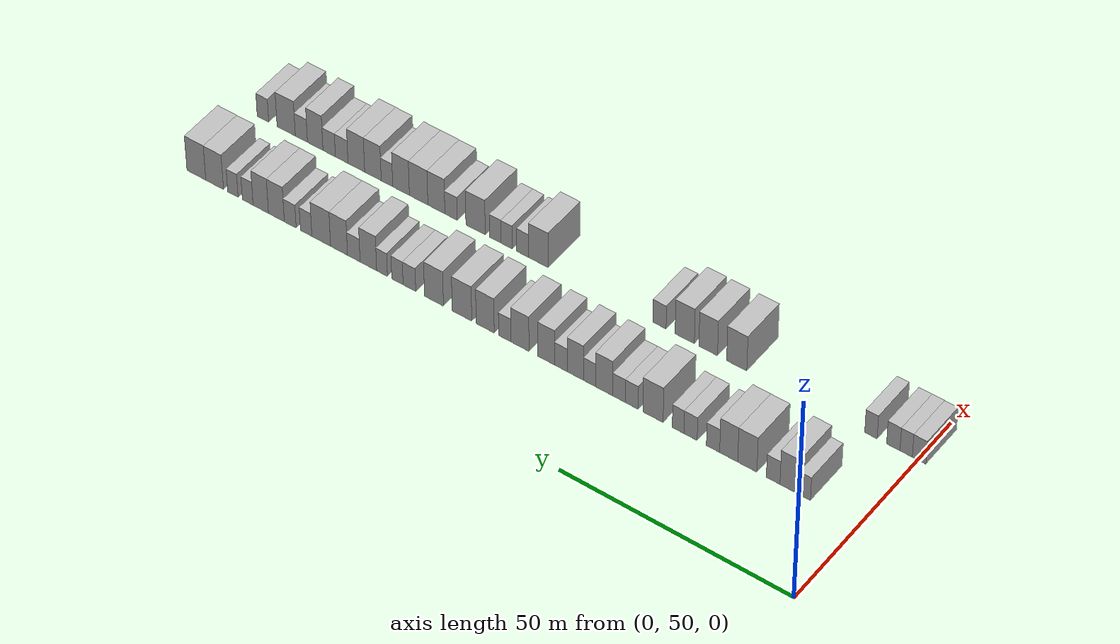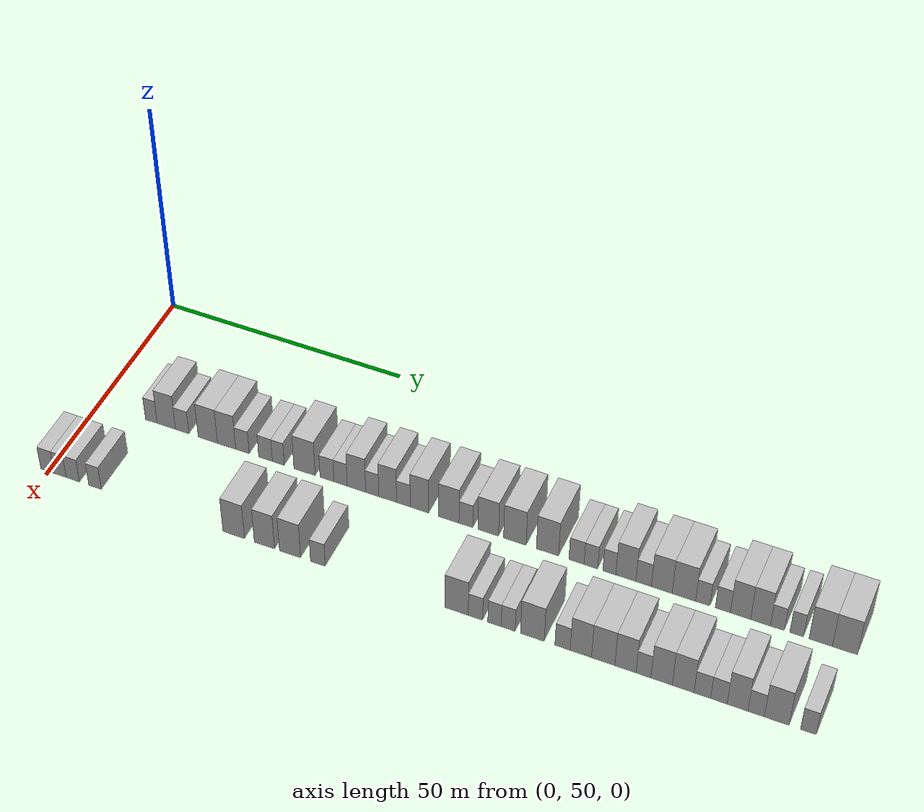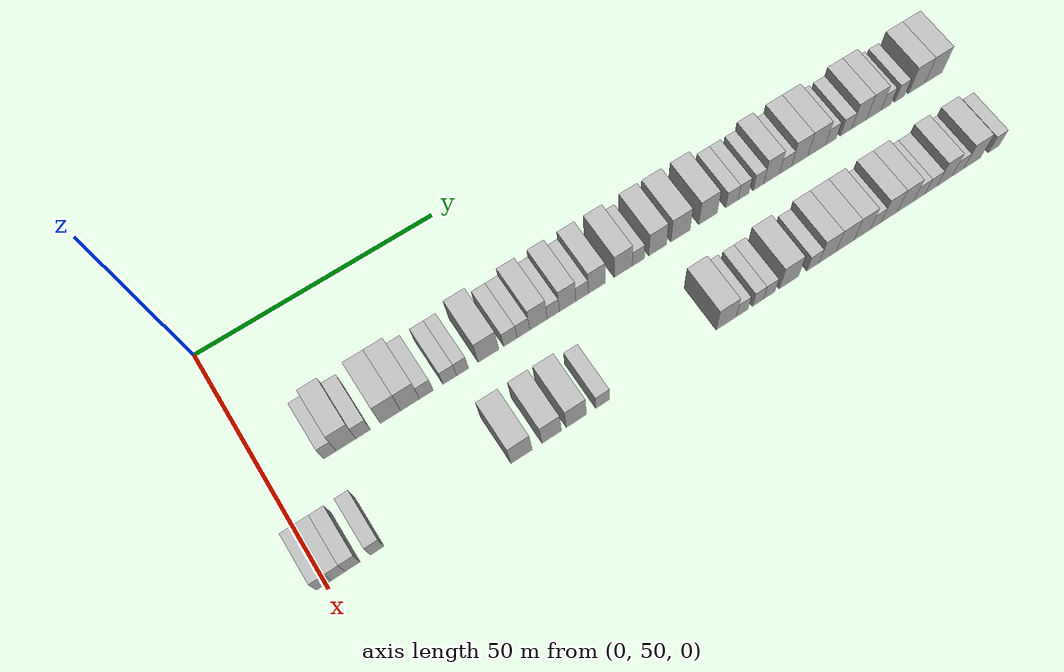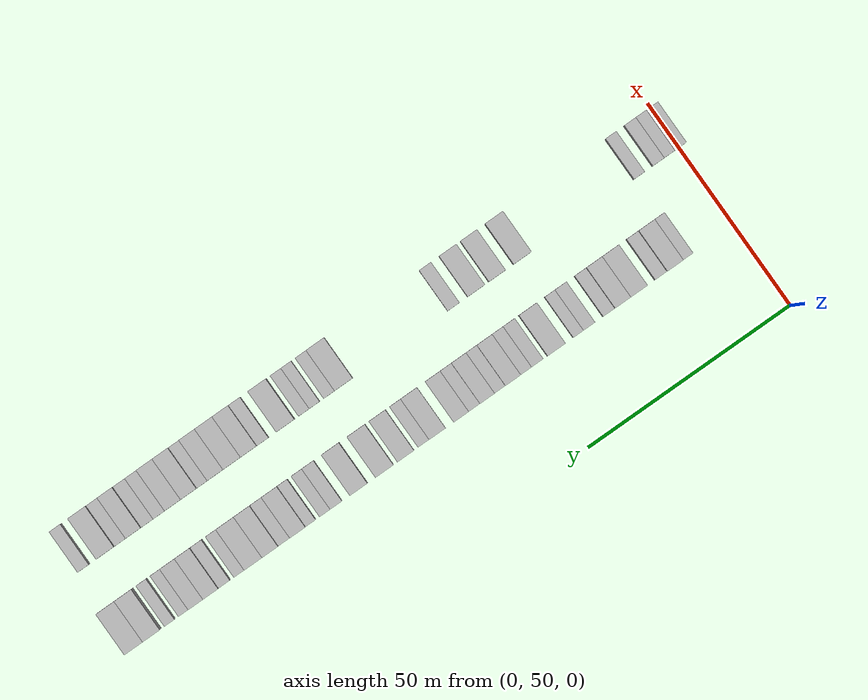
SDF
<sdf version="1.6">
 <world name="default">
  <model name="building_64">
   <static>1</static>
   <pose>25.0000 61.4079 0 0.000000 0.000000 0.000000</pose>
   <link name="link">
    <pose>0 0 3.00 0 0 0</pose>
    <collision name="collision"><geometry><box><size>10.0000 2.5252 6.0000</size></box></geometry></collision>
    <visual name="visual">
     <cast_shadows>0</cast_shadows>
     <geometry><box><size>10.0000 2.5252 6.0000</size></box></geometry>
     <material>
      <script>
       <uri>model://HANNAS_wall/materials/scripts</uri>
       <uri>model://HANNAS_wall/materials/textures</uri>
       <name>vrc/HANNAS_wall</name>
      </script>
     </material>
    </visual>
   </link>
  </model>
  <model name="building_65">
   <static>1</static>
   <pose>25.0000 64.6402 0 0.000000 0.000000 0.000000</pose>
   <link name="link">
    <pose>0 0 4.50 0 0 0</pose>
    <collision name="collision"><geometry><box><size>10.0000 3.9393 9.0000</size></box></geometry></collision>
    <visual name="visual">
     <cast_shadows>0</cast_shadows>
     <geometry><box><size>10.0000 3.9393 9.0000</size></box></geometry>
     <material>
      <script>
       <uri>model://HANNAS_wall/materials/scripts</uri>
       <uri>model://HANNAS_wall/materials/textures</uri>
       <name>vrc/HANNAS_wall</name>
      </script>
     </material>
    </visual>
   </link>
  </model>
  <model name="building_66">
   <static>1</static>
   <pose>25.0000 68.0581 0 0.000000 0.000000 0.000000</pose>
   <link name="link">
    <pose>0 0 3.00 0 0 0</pose>
    <collision name="collision"><geometry><box><size>10.0000 2.8966 6.0000</size></box></geometry></collision>
    <visual name="visual">
     <cast_shadows>0</cast_shadows>
     <geometry><box><size>10.0000 2.8966 6.0000</size></box></geometry>
     <material>
      <script>
       <uri>model://HANNAS_wall/materials/scripts</uri>
       <uri>model://HANNAS_wall/materials/textures</uri>
       <name>vrc/HANNAS_wall</name>
      </script>
     </material>
    </visual>
   </link>
  </model>
  <model name="building_67">
   <static>1</static>
   <pose>25.0000 73.5662 0 0.000000 0.000000 0.000000</pose>
   <link name="link">
    <pose>0 0 4.50 0 0 0</pose>
    <collision name="collision"><geometry><box><size>10.0000 4.1196 9.0000</size></box></geometry></collision>
    <visual name="visual">
     <cast_shadows>0</cast_shadows>
     <geometry><box><size>10.0000 4.1196 9.0000</size></box></geometry>
     <material>
      <script>
       <uri>model://HANNAS_wall/materials/scripts</uri>
       <uri>model://HANNAS_wall/materials/textures</uri>
       <name>vrc/HANNAS_wall</name>
      </script>
     </material>
    </visual>
   </link>
  </model>
  <model name="building_68">
   <static>1</static>
   <pose>25.0000 77.5588 0 0.000000 0.000000 0.000000</pose>
   <link name="link">
    <pose>0 0 4.50 0 0 0</pose>
    <collision name="collision"><geometry><box><size>10.0000 3.8657 9.0000</size></box></geometry></collision>
    <visual name="visual">
     <cast_shadows>0</cast_shadows>
     <geometry><box><size>10.0000 3.8657 9.0000</size></box></geometry>
     <material>
      <script>
       <uri>model://HANNAS_wall/materials/scripts</uri>
       <uri>model://HANNAS_wall/materials/textures</uri>
       <name>vrc/HANNAS_wall</name>
      </script>
     </material>
    </visual>
   </link>
  </model>
  <model name="building_69">
   <static>1</static>
   <pose>25.0000 80.9182 0 0.000000 0.000000 0.000000</pose>
   <link name="link">
    <pose>0 0 3.00 0 0 0</pose>
    <collision name="collision"><geometry><box><size>10.0000 2.8530 6.0000</size></box></geometry></collision>
    <visual name="visual">
     <cast_shadows>0</cast_shadows>
     <geometry><box><size>10.0000 2.8530 6.0000</size></box></geometry>
     <material>
      <script>
       <uri>model://HANNAS_wall/materials/scripts</uri>
       <uri>model://HANNAS_wall/materials/textures</uri>
       <name>vrc/HANNAS_wall</name>
      </script>
     </material>
    </visual>
   </link>
  </model>
  <model name="building_70">
   <static>1</static>
   <pose>25.0000 85.7758 0 0.000000 0.000000 0.000000</pose>
   <link name="link">
    <pose>0 0 3.00 0 0 0</pose>
    <collision name="collision"><geometry><box><size>10.0000 2.8622 6.0000</size></box></geometry></collision>
    <visual name="visual">
     <cast_shadows>0</cast_shadows>
     <geometry><box><size>10.0000 2.8622 6.0000</size></box></geometry>
     <material>
      <script>
       <uri>model://HANNAS_wall/materials/scripts</uri>
       <uri>model://HANNAS_wall/materials/textures</uri>
       <name>vrc/HANNAS_wall</name>
      </script>
     </material>
    </visual>
   </link>
  </model>
  <model name="building_71">
   <static>1</static>
   <pose>25.0000 88.4623 0 0.000000 0.000000 0.000000</pose>
   <link name="link">
    <pose>0 0 3.00 0 0 0</pose>
    <collision name="collision"><geometry><box><size>10.0000 2.5108 6.0000</size></box></geometry></collision>
    <visual name="visual">
     <cast_shadows>0</cast_shadows>
     <geometry><box><size>10.0000 2.5108 6.0000</size></box></geometry>
     <material>
      <script>
       <uri>model://HANNAS_wall/materials/scripts</uri>
       <uri>model://HANNAS_wall/materials/textures</uri>
       <name>vrc/HANNAS_wall</name>
      </script>
     </material>
    </visual>
   </link>
  </model>
  <model name="building_72">
   <static>1</static>
   <pose>25.0000 93.9240 0 0.000000 0.000000 0.000000</pose>
   <link name="link">
    <pose>0 0 4.50 0 0 0</pose>
    <collision name="collision"><geometry><box><size>10.0000 4.4126 9.0000</size></box></geometry></collision>
    <visual name="visual">
     <cast_shadows>0</cast_shadows>
     <geometry><box><size>10.0000 4.4126 9.0000</size></box></geometry>
     <material>
      <script>
       <uri>model://HANNAS_wall/materials/scripts</uri>
       <uri>model://HANNAS_wall/materials/textures</uri>
       <name>vrc/HANNAS_wall</name>
      </script>
     </material>
    </visual>
   </link>
  </model>
  <model name="building_73">
   <static>1</static>
   <pose>25.0000 98.5716 0 0.000000 0.000000 0.000000</pose>
   <link name="link">
    <pose>0 0 3.00 0 0 0</pose>
    <collision name="collision"><geometry><box><size>10.0000 2.8826 6.0000</size></box></geometry></collision>
    <visual name="visual">
     <cast_shadows>0</cast_shadows>
     <geometry><box><size>10.0000 2.8826 6.0000</size></box></geometry>
     <material>
      <script>
       <uri>model://HANNAS_wall/materials/scripts</uri>
       <uri>model://HANNAS_wall/materials/textures</uri>
       <name>vrc/HANNAS_wall</name>
      </script>
     </material>
    </visual>
   </link>
  </model>
  <model name="building_74">
   <static>1</static>
   <pose>25.0000 101.3755 0 0.000000 0.000000 0.000000</pose>
   <link name="link">
    <pose>0 0 3.00 0 0 0</pose>
    <collision name="collision"><geometry><box><size>10.0000 2.7252 6.0000</size></box></geometry></collision>
    <visual name="visual">
     <cast_shadows>0</cast_shadows>
     <geometry><box><size>10.0000 2.7252 6.0000</size></box></geometry>
     <material>
      <script>
       <uri>model://HANNAS_wall/materials/scripts</uri>
       <uri>model://HANNAS_wall/materials/textures</uri>
       <name>vrc/HANNAS_wall</name>
      </script>
     </material>
    </visual>
   </link>
  </model>
  <model name="building_75">
   <static>1</static>
   <pose>25.0000 104.6256 0 0.000000 0.000000 0.000000</pose>
   <link name="link">
    <pose>0 0 4.50 0 0 0</pose>
    <collision name="collision"><geometry><box><size>10.0000 3.7750 9.0000</size></box></geometry></collision>
    <visual name="visual">
     <cast_shadows>0</cast_shadows>
     <geometry><box><size>10.0000 3.7750 9.0000</size></box></geometry>
     <material>
      <script>
       <uri>model://HANNAS_wall/materials/scripts</uri>
       <uri>model://HANNAS_wall/materials/textures</uri>
       <name>vrc/HANNAS_wall</name>
      </script>
     </material>
    </visual>
   </link>
  </model>
  <model name="building_76">
   <static>1</static>
   <pose>25.0000 107.8437 0 0.000000 0.000000 0.000000</pose>
   <link name="link">
    <pose>0 0 3.00 0 0 0</pose>
    <collision name="collision"><geometry><box><size>10.0000 2.6613 6.0000</size></box></geometry></collision>
    <visual name="visual">
     <cast_shadows>0</cast_shadows>
     <geometry><box><size>10.0000 2.6613 6.0000</size></box></geometry>
     <material>
      <script>
       <uri>model://HANNAS_wall/materials/scripts</uri>
       <uri>model://HANNAS_wall/materials/textures</uri>
       <name>vrc/HANNAS_wall</name>
      </script>
     </material>
    </visual>
   </link>
  </model>
  <model name="building_77">
   <static>1</static>
   <pose>25.0000 110.9807 0 0.000000 0.000000 0.000000</pose>
   <link name="link">
    <pose>0 0 4.50 0 0 0</pose>
    <collision name="collision"><geometry><box><size>10.0000 3.6126 9.0000</size></box></geometry></collision>
    <visual name="visual">
     <cast_shadows>0</cast_shadows>
     <geometry><box><size>10.0000 3.6126 9.0000</size></box></geometry>
     <material>
      <script>
       <uri>model://HANNAS_wall/materials/scripts</uri>
       <uri>model://HANNAS_wall/materials/textures</uri>
       <name>vrc/HANNAS_wall</name>
      </script>
     </material>
    </visual>
   </link>
  </model>
  <model name="building_78">
   <static>1</static>
   <pose>25.0000 114.1705 0 0.000000 0.000000 0.000000</pose>
   <link name="link">
    <pose>0 0 3.00 0 0 0</pose>
    <collision name="collision"><geometry><box><size>10.0000 2.7669 6.0000</size></box></geometry></collision>
    <visual name="visual">
     <cast_shadows>0</cast_shadows>
     <geometry><box><size>10.0000 2.7669 6.0000</size></box></geometry>
     <material>
      <script>
       <uri>model://HANNAS_wall/materials/scripts</uri>
       <uri>model://HANNAS_wall/materials/textures</uri>
       <name>vrc/HANNAS_wall</name>
      </script>
     </material>
    </visual>
   </link>
  </model>
  <model name="building_79">
   <static>1</static>
   <pose>25.0000 117.4091 0 0.000000 0.000000 0.000000</pose>
   <link name="link">
    <pose>0 0 4.50 0 0 0</pose>
    <collision name="collision"><geometry><box><size>10.0000 3.7104 9.0000</size></box></geometry></collision>
    <visual name="visual">
     <cast_shadows>0</cast_shadows>
     <geometry><box><size>10.0000 3.7104 9.0000</size></box></geometry>
     <material>
      <script>
       <uri>model://HANNAS_wall/materials/scripts</uri>
       <uri>model://HANNAS_wall/materials/textures</uri>
       <name>vrc/HANNAS_wall</name>
      </script>
     </material>
    </visual>
   </link>
  </model>
  <model name="building_80">
   <static>1</static>
   <pose>25.0000 123.2911 0 0.000000 0.000000 0.000000</pose>
   <link name="link">
    <pose>0 0 4.50 0 0 0</pose>
    <collision name="collision"><geometry><box><size>10.0000 4.0536 9.0000</size></box></geometry></collision>
    <visual name="visual">
     <cast_shadows>0</cast_shadows>
     <geometry><box><size>10.0000 4.0536 9.0000</size></box></geometry>
     <material>
      <script>
       <uri>model://HANNAS_wall/materials/scripts</uri>
       <uri>model://HANNAS_wall/materials/textures</uri>
       <name>vrc/HANNAS_wall</name>
      </script>
     </material>
    </visual>
   </link>
  </model>
  <model name="building_81">
   <static>1</static>
   <pose>25.0000 126.6876 0 0.000000 0.000000 0.000000</pose>
   <link name="link">
    <pose>0 0 3.00 0 0 0</pose>
    <collision name="collision"><geometry><box><size>10.0000 2.7394 6.0000</size></box></geometry></collision>
    <visual name="visual">
     <cast_shadows>0</cast_shadows>
     <geometry><box><size>10.0000 2.7394 6.0000</size></box></geometry>
     <material>
      <script>
       <uri>model://HANNAS_wall/materials/scripts</uri>
       <uri>model://HANNAS_wall/materials/textures</uri>
       <name>vrc/HANNAS_wall</name>
      </script>
     </material>
    </visual>
   </link>
  </model>
  <model name="building_82">
   <static>1</static>
   <pose>25.0000 131.0903 0 0.000000 0.000000 0.000000</pose>
   <link name="link">
    <pose>0 0 4.50 0 0 0</pose>
    <collision name="collision"><geometry><box><size>10.0000 4.0660 9.0000</size></box></geometry></collision>
    <visual name="visual">
     <cast_shadows>0</cast_shadows>
     <geometry><box><size>10.0000 4.0660 9.0000</size></box></geometry>
     <material>
      <script>
       <uri>model://HANNAS_wall/materials/scripts</uri>
       <uri>model://HANNAS_wall/materials/textures</uri>
       <name>vrc/HANNAS_wall</name>
      </script>
     </material>
    </visual>
   </link>
  </model>
  <model name="building_83">
   <static>1</static>
   <pose>25.0000 136.3307 0 0.000000 0.000000 0.000000</pose>
   <link name="link">
    <pose>0 0 4.50 0 0 0</pose>
    <collision name="collision"><geometry><box><size>10.0000 4.4148 9.0000</size></box></geometry></collision>
    <visual name="visual">
     <cast_shadows>0</cast_shadows>
     <geometry><box><size>10.0000 4.4148 9.0000</size></box></geometry>
     <material>
      <script>
       <uri>model://HANNAS_wall/materials/scripts</uri>
       <uri>model://HANNAS_wall/materials/textures</uri>
       <name>vrc/HANNAS_wall</name>
      </script>
     </material>
    </visual>
   </link>
  </model>
  <model name="building_84">
   <static>1</static>
   <pose>25.0000 142.6915 0 0.000000 0.000000 0.000000</pose>
   <link name="link">
    <pose>0 0 4.50 0 0 0</pose>
    <collision name="collision"><geometry><box><size>10.0000 4.3068 9.0000</size></box></geometry></collision>
    <visual name="visual">
     <cast_shadows>0</cast_shadows>
     <geometry><box><size>10.0000 4.3068 9.0000</size></box></geometry>
     <material>
      <script>
       <uri>model://HANNAS_wall/materials/scripts</uri>
       <uri>model://HANNAS_wall/materials/textures</uri>
       <name>vrc/HANNAS_wall</name>
      </script>
     </material>
    </visual>
   </link>
  </model>
  <model name="building_85">
   <static>1</static>
   <pose>25.0000 148.2996 0 0.000000 0.000000 0.000000</pose>
   <link name="link">
    <pose>0 0 3.00 0 0 0</pose>
    <collision name="collision"><geometry><box><size>10.0000 2.9093 6.0000</size></box></geometry></collision>
    <visual name="visual">
     <cast_shadows>0</cast_shadows>
     <geometry><box><size>10.0000 2.9093 6.0000</size></box></geometry>
     <material>
      <script>
       <uri>model://HANNAS_wall/materials/scripts</uri>
       <uri>model://HANNAS_wall/materials/textures</uri>
       <name>vrc/HANNAS_wall</name>
      </script>
     </material>
    </visual>
   </link>
  </model>
  <model name="building_86">
   <static>1</static>
   <pose>25.0000 151.0538 0 0.000000 0.000000 0.000000</pose>
   <link name="link">
    <pose>0 0 3.00 0 0 0</pose>
    <collision name="collision"><geometry><box><size>10.0000 2.5992 6.0000</size></box></geometry></collision>
    <visual name="visual">
     <cast_shadows>0</cast_shadows>
     <geometry><box><size>10.0000 2.5992 6.0000</size></box></geometry>
     <material>
      <script>
       <uri>model://HANNAS_wall/materials/scripts</uri>
       <uri>model://HANNAS_wall/materials/textures</uri>
       <name>vrc/HANNAS_wall</name>
      </script>
     </material>
    </visual>
   </link>
  </model>
  <model name="building_87">
   <static>1</static>
   <pose>25.0000 154.5870 0 0.000000 0.000000 0.000000</pose>
   <link name="link">
    <pose>0 0 3.00 0 0 0</pose>
    <collision name="collision"><geometry><box><size>10.0000 2.4672 6.0000</size></box></geometry></collision>
    <visual name="visual">
     <cast_shadows>0</cast_shadows>
     <geometry><box><size>10.0000 2.4672 6.0000</size></box></geometry>
     <material>
      <script>
       <uri>model://HANNAS_wall/materials/scripts</uri>
       <uri>model://HANNAS_wall/materials/textures</uri>
       <name>vrc/HANNAS_wall</name>
      </script>
     </material>
    </visual>
   </link>
  </model>
  <model name="building_88">
   <static>1</static>
   <pose>25.0000 157.7297 0 0.000000 0.000000 0.000000</pose>
   <link name="link">
    <pose>0 0 4.50 0 0 0</pose>
    <collision name="collision"><geometry><box><size>10.0000 3.8180 9.0000</size></box></geometry></collision>
    <visual name="visual">
     <cast_shadows>0</cast_shadows>
     <geometry><box><size>10.0000 3.8180 9.0000</size></box></geometry>
     <material>
      <script>
       <uri>model://HANNAS_wall/materials/scripts</uri>
       <uri>model://HANNAS_wall/materials/textures</uri>
       <name>vrc/HANNAS_wall</name>
      </script>
     </material>
    </visual>
   </link>
  </model>
  <model name="building_89">
   <static>1</static>
   <pose>25.0000 161.0930 0 0.000000 0.000000 0.000000</pose>
   <link name="link">
    <pose>0 0 3.00 0 0 0</pose>
    <collision name="collision"><geometry><box><size>10.0000 2.9086 6.0000</size></box></geometry></collision>
    <visual name="visual">
     <cast_shadows>0</cast_shadows>
     <geometry><box><size>10.0000 2.9086 6.0000</size></box></geometry>
     <material>
      <script>
       <uri>model://HANNAS_wall/materials/scripts</uri>
       <uri>model://HANNAS_wall/materials/textures</uri>
       <name>vrc/HANNAS_wall</name>
      </script>
     </material>
    </visual>
   </link>
  </model>
  <model name="building_90">
   <static>1</static>
   <pose>25.0000 164.5099 0 0.000000 0.000000 0.000000</pose>
   <link name="link">
    <pose>0 0 4.50 0 0 0</pose>
    <collision name="collision"><geometry><box><size>10.0000 3.9251 9.0000</size></box></geometry></collision>
    <visual name="visual">
     <cast_shadows>0</cast_shadows>
     <geometry><box><size>10.0000 3.9251 9.0000</size></box></geometry>
     <material>
      <script>
       <uri>model://HANNAS_wall/materials/scripts</uri>
       <uri>model://HANNAS_wall/materials/textures</uri>
       <name>vrc/HANNAS_wall</name>
      </script>
     </material>
    </visual>
   </link>
  </model>
  <model name="building_91">
   <static>1</static>
   <pose>25.0000 168.6640 0 0.000000 0.000000 0.000000</pose>
   <link name="link">
    <pose>0 0 4.50 0 0 0</pose>
    <collision name="collision"><geometry><box><size>10.0000 4.3831 9.0000</size></box></geometry></collision>
    <visual name="visual">
     <cast_shadows>0</cast_shadows>
     <geometry><box><size>10.0000 4.3831 9.0000</size></box></geometry>
     <material>
      <script>
       <uri>model://HANNAS_wall/materials/scripts</uri>
       <uri>model://HANNAS_wall/materials/textures</uri>
       <name>vrc/HANNAS_wall</name>
      </script>
     </material>
    </visual>
   </link>
  </model>
  <model name="building_92">
   <static>1</static>
   <pose>25.0000 172.1884 0 0.000000 0.000000 0.000000</pose>
   <link name="link">
    <pose>0 0 3.00 0 0 0</pose>
    <collision name="collision"><geometry><box><size>10.0000 2.6658 6.0000</size></box></geometry></collision>
    <visual name="visual">
     <cast_shadows>0</cast_shadows>
     <geometry><box><size>10.0000 2.6658 6.0000</size></box></geometry>
     <material>
      <script>
       <uri>model://HANNAS_wall/materials/scripts</uri>
       <uri>model://HANNAS_wall/materials/textures</uri>
       <name>vrc/HANNAS_wall</name>
      </script>
     </material>
    </visual>
   </link>
  </model>
  <model name="building_93">
   <static>1</static>
   <pose>25.0000 175.9110 0 0.000000 0.000000 0.000000</pose>
   <link name="link">
    <pose>0 0 3.00 0 0 0</pose>
    <collision name="collision"><geometry><box><size>10.0000 2.7793 6.0000</size></box></geometry></collision>
    <visual name="visual">
     <cast_shadows>0</cast_shadows>
     <geometry><box><size>10.0000 2.7793 6.0000</size></box></geometry>
     <material>
      <script>
       <uri>model://HANNAS_wall/materials/scripts</uri>
       <uri>model://HANNAS_wall/materials/textures</uri>
       <name>vrc/HANNAS_wall</name>
      </script>
     </material>
    </visual>
   </link>
  </model>
  <model name="building_94">
   <static>1</static>
   <pose>25.0000 179.1659 0 0.000000 0.000000 0.000000</pose>
   <link name="link">
    <pose>0 0 4.50 0 0 0</pose>
    <collision name="collision"><geometry><box><size>10.0000 3.7306 9.0000</size></box></geometry></collision>
    <visual name="visual">
     <cast_shadows>0</cast_shadows>
     <geometry><box><size>10.0000 3.7306 9.0000</size></box></geometry>
     <material>
      <script>
       <uri>model://HANNAS_wall/materials/scripts</uri>
       <uri>model://HANNAS_wall/materials/textures</uri>
       <name>vrc/HANNAS_wall</name>
      </script>
     </material>
    </visual>
   </link>
  </model>
  <model name="building_95">
   <static>1</static>
   <pose>25.0000 182.8454 0 0.000000 0.000000 0.000000</pose>
   <link name="link">
    <pose>0 0 4.50 0 0 0</pose>
    <collision name="collision"><geometry><box><size>10.0000 3.6283 9.0000</size></box></geometry></collision>
    <visual name="visual">
     <cast_shadows>0</cast_shadows>
     <geometry><box><size>10.0000 3.6283 9.0000</size></box></geometry>
     <material>
      <script>
       <uri>model://HANNAS_wall/materials/scripts</uri>
       <uri>model://HANNAS_wall/materials/textures</uri>
       <name>vrc/HANNAS_wall</name>
      </script>
     </material>
    </visual>
   </link>
  </model>
  <model name="building_96">
   <static>1</static>
   <pose>25.0000 185.9268 0 0.000000 0.000000 0.000000</pose>
   <link name="link">
    <pose>0 0 3.00 0 0 0</pose>
    <collision name="collision"><geometry><box><size>10.0000 2.5345 6.0000</size></box></geometry></collision>
    <visual name="visual">
     <cast_shadows>0</cast_shadows>
     <geometry><box><size>10.0000 2.5345 6.0000</size></box></geometry>
     <material>
      <script>
       <uri>model://HANNAS_wall/materials/scripts</uri>
       <uri>model://HANNAS_wall/materials/textures</uri>
       <name>vrc/HANNAS_wall</name>
      </script>
     </material>
    </visual>
   </link>
  </model>
  <model name="building_97">
   <static>1</static>
   <pose>25.0000 189.4286 0 0.000000 0.000000 0.000000</pose>
   <link name="link">
    <pose>0 0 3.00 0 0 0</pose>
    <collision name="collision"><geometry><box><size>10.0000 2.4690 6.0000</size></box></geometry></collision>
    <visual name="visual">
     <cast_shadows>0</cast_shadows>
     <geometry><box><size>10.0000 2.4690 6.0000</size></box></geometry>
     <material>
      <script>
       <uri>model://HANNAS_wall/materials/scripts</uri>
       <uri>model://HANNAS_wall/materials/textures</uri>
       <name>vrc/HANNAS_wall</name>
      </script>
     </material>
    </visual>
   </link>
  </model>
  <model name="building_98">
   <static>1</static>
   <pose>25.0000 193.7729 0 0.000000 0.000000 0.000000</pose>
   <link name="link">
    <pose>0 0 4.50 0 0 0</pose>
    <collision name="collision"><geometry><box><size>10.0000 4.2197 9.0000</size></box></geometry></collision>
    <visual name="visual">
     <cast_shadows>0</cast_shadows>
     <geometry><box><size>10.0000 4.2197 9.0000</size></box></geometry>
     <material>
      <script>
       <uri>model://HANNAS_wall/materials/scripts</uri>
       <uri>model://HANNAS_wall/materials/textures</uri>
       <name>vrc/HANNAS_wall</name>
      </script>
     </material>
    </visual>
   </link>
  </model>
  <model name="building_99">
   <static>1</static>
   <pose>25.0000 198.1286 0 0.000000 0.000000 0.000000</pose>
   <link name="link">
    <pose>0 0 4.50 0 0 0</pose>
    <collision name="collision"><geometry><box><size>10.0000 4.4916 9.0000</size></box></geometry></collision>
    <visual name="visual">
     <cast_shadows>0</cast_shadows>
     <geometry><box><size>10.0000 4.4916 9.0000</size></box></geometry>
     <material>
      <script>
       <uri>model://HANNAS_wall/materials/scripts</uri>
       <uri>model://HANNAS_wall/materials/textures</uri>
       <name>vrc/HANNAS_wall</name>
      </script>
     </material>
    </visual>
   </link>
  </model>
  <model name="building_160">
   <static>1</static>
   <pose>44.0000 49.7823 0 0.000000 0.000000 0.000000</pose>
   <link name="link">
    <pose>0 0 3.00 0 0 0</pose>
    <collision name="collision"><geometry><box><size>10.0000 2.8521 6.0000</size></box></geometry></collision>
    <visual name="visual">
     <cast_shadows>0</cast_shadows>
     <geometry><box><size>10.0000 2.8521 6.0000</size></box></geometry>
     <material>
      <script>
       <uri>model://HANNAS_wall/materials/scripts</uri>
       <uri>model://HANNAS_wall/materials/textures</uri>
       <name>vrc/HANNAS_wall</name>
      </script>
     </material>
    </visual>
   </link>
  </model>
  <model name="building_161">
   <static>1</static>
   <pose>44.0000 52.5149 0 0.000000 0.000000 0.000000</pose>
   <link name="link">
    <pose>0 0 3.00 0 0 0</pose>
    <collision name="collision"><geometry><box><size>10.0000 2.6132 6.0000</size></box></geometry></collision>
    <visual name="visual">
     <cast_shadows>0</cast_shadows>
     <geometry><box><size>10.0000 2.6132 6.0000</size></box></geometry>
     <material>
      <script>
       <uri>model://HANNAS_wall/materials/scripts</uri>
       <uri>model://HANNAS_wall/materials/textures</uri>
       <name>vrc/HANNAS_wall</name>
      </script>
     </material>
    </visual>
   </link>
  </model>
  <model name="building_162">
   <static>1</static>
   <pose>44.0000 55.2338 0 0.000000 0.000000 0.000000</pose>
   <link name="link">
    <pose>0 0 3.00 0 0 0</pose>
    <collision name="collision"><geometry><box><size>10.0000 2.8246 6.0000</size></box></geometry></collision>
    <visual name="visual">
     <cast_shadows>0</cast_shadows>
     <geometry><box><size>10.0000 2.8246 6.0000</size></box></geometry>
     <material>
      <script>
       <uri>model://HANNAS_wall/materials/scripts</uri>
       <uri>model://HANNAS_wall/materials/textures</uri>
       <name>vrc/HANNAS_wall</name>
      </script>
     </material>
    </visual>
   </link>
  </model>
  <model name="building_163">
   <static>1</static>
   <pose>44.0000 59.9672 0 0.000000 0.000000 0.000000</pose>
   <link name="link">
    <pose>0 0 3.00 0 0 0</pose>
    <collision name="collision"><geometry><box><size>10.0000 2.6421 6.0000</size></box></geometry></collision>
    <visual name="visual">
     <cast_shadows>0</cast_shadows>
     <geometry><box><size>10.0000 2.6421 6.0000</size></box></geometry>
     <material>
      <script>
       <uri>model://HANNAS_wall/materials/scripts</uri>
       <uri>model://HANNAS_wall/materials/textures</uri>
       <name>vrc/HANNAS_wall</name>
      </script>
     </material>
    </visual>
   </link>
  </model>
  <model name="building_164">
   <static>1</static>
   <pose>44.0000 88.8761 0 0.000000 0.000000 0.000000</pose>
   <link name="link">
    <pose>0 0 4.50 0 0 0</pose>
    <collision name="collision"><geometry><box><size>10.0000 4.3919 9.0000</size></box></geometry></collision>
    <visual name="visual">
     <cast_shadows>0</cast_shadows>
     <geometry><box><size>10.0000 4.3919 9.0000</size></box></geometry>
     <material>
      <script>
       <uri>model://HANNAS_wall/materials/scripts</uri>
       <uri>model://HANNAS_wall/materials/textures</uri>
       <name>vrc/HANNAS_wall</name>
      </script>
     </material>
    </visual>
   </link>
  </model>
  <model name="building_165">
   <static>1</static>
   <pose>44.0000 95.1161 0 0.000000 0.000000 0.000000</pose>
   <link name="link">
    <pose>0 0 4.50 0 0 0</pose>
    <collision name="collision"><geometry><box><size>10.0000 4.0880 9.0000</size></box></geometry></collision>
    <visual name="visual">
     <cast_shadows>0</cast_shadows>
     <geometry><box><size>10.0000 4.0880 9.0000</size></box></geometry>
     <material>
      <script>
       <uri>model://HANNAS_wall/materials/scripts</uri>
       <uri>model://HANNAS_wall/materials/textures</uri>
       <name>vrc/HANNAS_wall</name>
      </script>
     </material>
    </visual>
   </link>
  </model>
  <model name="building_166">
   <static>1</static>
   <pose>44.0000 100.2779 0 0.000000 0.000000 0.000000</pose>
   <link name="link">
    <pose>0 0 4.50 0 0 0</pose>
    <collision name="collision"><geometry><box><size>10.0000 4.2356 9.0000</size></box></geometry></collision>
    <visual name="visual">
     <cast_shadows>0</cast_shadows>
     <geometry><box><size>10.0000 4.2356 9.0000</size></box></geometry>
     <material>
      <script>
       <uri>model://HANNAS_wall/materials/scripts</uri>
       <uri>model://HANNAS_wall/materials/textures</uri>
       <name>vrc/HANNAS_wall</name>
      </script>
     </material>
    </visual>
   </link>
  </model>
  <model name="building_167">
   <static>1</static>
   <pose>44.0000 105.8570 0 0.000000 0.000000 0.000000</pose>
   <link name="link">
    <pose>0 0 3.00 0 0 0</pose>
    <collision name="collision"><geometry><box><size>10.0000 2.9226 6.0000</size></box></geometry></collision>
    <visual name="visual">
     <cast_shadows>0</cast_shadows>
     <geometry><box><size>10.0000 2.9226 6.0000</size></box></geometry>
     <material>
      <script>
       <uri>model://HANNAS_wall/materials/scripts</uri>
       <uri>model://HANNAS_wall/materials/textures</uri>
       <name>vrc/HANNAS_wall</name>
      </script>
     </material>
    </visual>
   </link>
  </model>
  <model name="building_168">
   <static>1</static>
   <pose>44.0000 132.9837 0 0.000000 0.000000 0.000000</pose>
   <link name="link">
    <pose>0 0 4.50 0 0 0</pose>
    <collision name="collision"><geometry><box><size>10.0000 4.4436 9.0000</size></box></geometry></collision>
    <visual name="visual">
     <cast_shadows>0</cast_shadows>
     <geometry><box><size>10.0000 4.4436 9.0000</size></box></geometry>
     <material>
      <script>
       <uri>model://HANNAS_wall/materials/scripts</uri>
       <uri>model://HANNAS_wall/materials/textures</uri>
       <name>vrc/HANNAS_wall</name>
      </script>
     </material>
    </visual>
   </link>
  </model>
  <model name="building_169">
   <static>1</static>
   <pose>44.0000 136.5744 0 0.000000 0.000000 0.000000</pose>
   <link name="link">
    <pose>0 0 3.00 0 0 0</pose>
    <collision name="collision"><geometry><box><size>10.0000 2.7379 6.0000</size></box></geometry></collision>
    <visual name="visual">
     <cast_shadows>0</cast_shadows>
     <geometry><box><size>10.0000 2.7379 6.0000</size></box></geometry>
     <material>
      <script>
       <uri>model://HANNAS_wall/materials/scripts</uri>
       <uri>model://HANNAS_wall/materials/textures</uri>
       <name>vrc/HANNAS_wall</name>
      </script>
     </material>
    </visual>
   </link>
  </model>
  <model name="building_170">
   <static>1</static>
   <pose>44.0000 140.2117 0 0.000000 0.000000 0.000000</pose>
   <link name="link">
    <pose>0 0 3.00 0 0 0</pose>
    <collision name="collision"><geometry><box><size>10.0000 2.5367 6.0000</size></box></geometry></collision>
    <visual name="visual">
     <cast_shadows>0</cast_shadows>
     <geometry><box><size>10.0000 2.5367 6.0000</size></box></geometry>
     <material>
      <script>
       <uri>model://HANNAS_wall/materials/scripts</uri>
       <uri>model://HANNAS_wall/materials/textures</uri>
       <name>vrc/HANNAS_wall</name>
      </script>
     </material>
    </visual>
   </link>
  </model>
  <model name="building_171">
   <static>1</static>
   <pose>44.0000 142.8016 0 0.000000 0.000000 0.000000</pose>
   <link name="link">
    <pose>0 0 3.00 0 0 0</pose>
    <collision name="collision"><geometry><box><size>10.0000 2.6431 6.0000</size></box></geometry></collision>
    <visual name="visual">
     <cast_shadows>0</cast_shadows>
     <geometry><box><size>10.0000 2.6431 6.0000</size></box></geometry>
     <material>
      <script>
       <uri>model://HANNAS_wall/materials/scripts</uri>
       <uri>model://HANNAS_wall/materials/textures</uri>
       <name>vrc/HANNAS_wall</name>
      </script>
     </material>
    </visual>
   </link>
  </model>
  <model name="building_172">
   <static>1</static>
   <pose>44.0000 147.3482 0 0.000000 0.000000 0.000000</pose>
   <link name="link">
    <pose>0 0 4.50 0 0 0</pose>
    <collision name="collision"><geometry><box><size>10.0000 4.4499 9.0000</size></box></geometry></collision>
    <visual name="visual">
     <cast_shadows>0</cast_shadows>
     <geometry><box><size>10.0000 4.4499 9.0000</size></box></geometry>
     <material>
      <script>
       <uri>model://HANNAS_wall/materials/scripts</uri>
       <uri>model://HANNAS_wall/materials/textures</uri>
       <name>vrc/HANNAS_wall</name>
      </script>
     </material>
    </visual>
   </link>
  </model>
  <model name="building_173">
   <static>1</static>
   <pose>44.0000 152.9992 0 0.000000 0.000000 0.000000</pose>
   <link name="link">
    <pose>0 0 3.00 0 0 0</pose>
    <collision name="collision"><geometry><box><size>10.0000 2.8520 6.0000</size></box></geometry></collision>
    <visual name="visual">
     <cast_shadows>0</cast_shadows>
     <geometry><box><size>10.0000 2.8520 6.0000</size></box></geometry>
     <material>
      <script>
       <uri>model://HANNAS_wall/materials/scripts</uri>
       <uri>model://HANNAS_wall/materials/textures</uri>
       <name>vrc/HANNAS_wall</name>
      </script>
     </material>
    </visual>
   </link>
  </model>
  <model name="building_174">
   <static>1</static>
   <pose>44.0000 156.3967 0 0.000000 0.000000 0.000000</pose>
   <link name="link">
    <pose>0 0 4.50 0 0 0</pose>
    <collision name="collision"><geometry><box><size>10.0000 3.9431 9.0000</size></box></geometry></collision>
    <visual name="visual">
     <cast_shadows>0</cast_shadows>
     <geometry><box><size>10.0000 3.9431 9.0000</size></box></geometry>
     <material>
      <script>
       <uri>model://HANNAS_wall/materials/scripts</uri>
       <uri>model://HANNAS_wall/materials/textures</uri>
       <name>vrc/HANNAS_wall</name>
      </script>
     </material>
    </visual>
   </link>
  </model>
  <model name="building_175">
   <static>1</static>
   <pose>44.0000 160.5179 0 0.000000 0.000000 0.000000</pose>
   <link name="link">
    <pose>0 0 4.50 0 0 0</pose>
    <collision name="collision"><geometry><box><size>10.0000 4.2993 9.0000</size></box></geometry></collision>
    <visual name="visual">
     <cast_shadows>0</cast_shadows>
     <geometry><box><size>10.0000 4.2993 9.0000</size></box></geometry>
     <material>
      <script>
       <uri>model://HANNAS_wall/materials/scripts</uri>
       <uri>model://HANNAS_wall/materials/textures</uri>
       <name>vrc/HANNAS_wall</name>
      </script>
     </material>
    </visual>
   </link>
  </model>
  <model name="building_176">
   <static>1</static>
   <pose>44.0000 164.6127 0 0.000000 0.000000 0.000000</pose>
   <link name="link">
    <pose>0 0 4.50 0 0 0</pose>
    <collision name="collision"><geometry><box><size>10.0000 3.8903 9.0000</size></box></geometry></collision>
    <visual name="visual">
     <cast_shadows>0</cast_shadows>
     <geometry><box><size>10.0000 3.8903 9.0000</size></box></geometry>
     <material>
      <script>
       <uri>model://HANNAS_wall/materials/scripts</uri>
       <uri>model://HANNAS_wall/materials/textures</uri>
       <name>vrc/HANNAS_wall</name>
      </script>
     </material>
    </visual>
   </link>
  </model>
  <model name="building_177">
   <static>1</static>
   <pose>44.0000 167.9018 0 0.000000 0.000000 0.000000</pose>
   <link name="link">
    <pose>0 0 3.00 0 0 0</pose>
    <collision name="collision"><geometry><box><size>10.0000 2.6879 6.0000</size></box></geometry></collision>
    <visual name="visual">
     <cast_shadows>0</cast_shadows>
     <geometry><box><size>10.0000 2.6879 6.0000</size></box></geometry>
     <material>
      <script>
       <uri>model://HANNAS_wall/materials/scripts</uri>
       <uri>model://HANNAS_wall/materials/textures</uri>
       <name>vrc/HANNAS_wall</name>
      </script>
     </material>
    </visual>
   </link>
  </model>
  <model name="building_178">
   <static>1</static>
   <pose>44.0000 171.1867 0 0.000000 0.000000 0.000000</pose>
   <link name="link">
    <pose>0 0 4.50 0 0 0</pose>
    <collision name="collision"><geometry><box><size>10.0000 3.8818 9.0000</size></box></geometry></collision>
    <visual name="visual">
     <cast_shadows>0</cast_shadows>
     <geometry><box><size>10.0000 3.8818 9.0000</size></box></geometry>
     <material>
      <script>
       <uri>model://HANNAS_wall/materials/scripts</uri>
       <uri>model://HANNAS_wall/materials/textures</uri>
       <name>vrc/HANNAS_wall</name>
      </script>
     </material>
    </visual>
   </link>
  </model>
  <model name="building_179">
   <static>1</static>
   <pose>44.0000 175.0907 0 0.000000 0.000000 0.000000</pose>
   <link name="link">
    <pose>0 0 4.50 0 0 0</pose>
    <collision name="collision"><geometry><box><size>10.0000 3.9263 9.0000</size></box></geometry></collision>
    <visual name="visual">
     <cast_shadows>0</cast_shadows>
     <geometry><box><size>10.0000 3.9263 9.0000</size></box></geometry>
     <material>
      <script>
       <uri>model://HANNAS_wall/materials/scripts</uri>
       <uri>model://HANNAS_wall/materials/textures</uri>
       <name>vrc/HANNAS_wall</name>
      </script>
     </material>
    </visual>
   </link>
  </model>
  <model name="building_180">
   <static>1</static>
   <pose>44.0000 178.5440 0 0.000000 0.000000 0.000000</pose>
   <link name="link">
    <pose>0 0 3.00 0 0 0</pose>
    <collision name="collision"><geometry><box><size>10.0000 2.9803 6.0000</size></box></geometry></collision>
    <visual name="visual">
     <cast_shadows>0</cast_shadows>
     <geometry><box><size>10.0000 2.9803 6.0000</size></box></geometry>
     <material>
      <script>
       <uri>model://HANNAS_wall/materials/scripts</uri>
       <uri>model://HANNAS_wall/materials/textures</uri>
       <name>vrc/HANNAS_wall</name>
      </script>
     </material>
    </visual>
   </link>
  </model>
  <model name="building_181">
   <static>1</static>
   <pose>44.0000 181.5046 0 0.000000 0.000000 0.000000</pose>
   <link name="link">
    <pose>0 0 3.00 0 0 0</pose>
    <collision name="collision"><geometry><box><size>10.0000 2.9410 6.0000</size></box></geometry></collision>
    <visual name="visual">
     <cast_shadows>0</cast_shadows>
     <geometry><box><size>10.0000 2.9410 6.0000</size></box></geometry>
     <material>
      <script>
       <uri>model://HANNAS_wall/materials/scripts</uri>
       <uri>model://HANNAS_wall/materials/textures</uri>
       <name>vrc/HANNAS_wall</name>
      </script>
     </material>
    </visual>
   </link>
  </model>
  <model name="building_182">
   <static>1</static>
   <pose>44.0000 184.8238 0 0.000000 0.000000 0.000000</pose>
   <link name="link">
    <pose>0 0 4.50 0 0 0</pose>
    <collision name="collision"><geometry><box><size>10.0000 3.6973 9.0000</size></box></geometry></collision>
    <visual name="visual">
     <cast_shadows>0</cast_shadows>
     <geometry><box><size>10.0000 3.6973 9.0000</size></box></geometry>
     <material>
      <script>
       <uri>model://HANNAS_wall/materials/scripts</uri>
       <uri>model://HANNAS_wall/materials/textures</uri>
       <name>vrc/HANNAS_wall</name>
      </script>
     </material>
    </visual>
   </link>
  </model>
  <model name="building_183">
   <static>1</static>
   <pose>44.0000 188.1187 0 0.000000 0.000000 0.000000</pose>
   <link name="link">
    <pose>0 0 3.00 0 0 0</pose>
    <collision name="collision"><geometry><box><size>10.0000 2.8926 6.0000</size></box></geometry></collision>
    <visual name="visual">
     <cast_shadows>0</cast_shadows>
     <geometry><box><size>10.0000 2.8926 6.0000</size></box></geometry>
     <material>
      <script>
       <uri>model://HANNAS_wall/materials/scripts</uri>
       <uri>model://HANNAS_wall/materials/textures</uri>
       <name>vrc/HANNAS_wall</name>
      </script>
     </material>
    </visual>
   </link>
  </model>
  <model name="building_184">
   <static>1</static>
   <pose>44.0000 191.7445 0 0.000000 0.000000 0.000000</pose>
   <link name="link">
    <pose>0 0 4.50 0 0 0</pose>
    <collision name="collision"><geometry><box><size>10.0000 4.3588 9.0000</size></box></geometry></collision>
    <visual name="visual">
     <cast_shadows>0</cast_shadows>
     <geometry><box><size>10.0000 4.3588 9.0000</size></box></geometry>
     <material>
      <script>
       <uri>model://HANNAS_wall/materials/scripts</uri>
       <uri>model://HANNAS_wall/materials/textures</uri>
       <name>vrc/HANNAS_wall</name>
      </script>
     </material>
    </visual>
   </link>
  </model>
  <model name="building_185">
   <static>1</static>
   <pose>44.0000 197.2980 0 0.000000 0.000000 0.000000</pose>
   <link name="link">
    <pose>0 0 3.00 0 0 0</pose>
    <collision name="collision"><geometry><box><size>10.0000 2.7484 6.0000</size></box></geometry></collision>
    <visual name="visual">
     <cast_shadows>0</cast_shadows>
     <geometry><box><size>10.0000 2.7484 6.0000</size></box></geometry>
     <material>
      <script>
       <uri>model://HANNAS_wall/materials/scripts</uri>
       <uri>model://HANNAS_wall/materials/textures</uri>
       <name>vrc/HANNAS_wall</name>
      </script>
     </material>
    </visual>
   </link>
  </model>
 </world>
</sdf>
